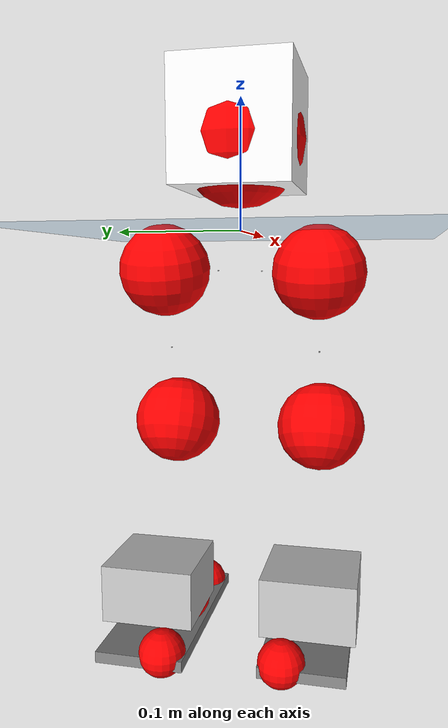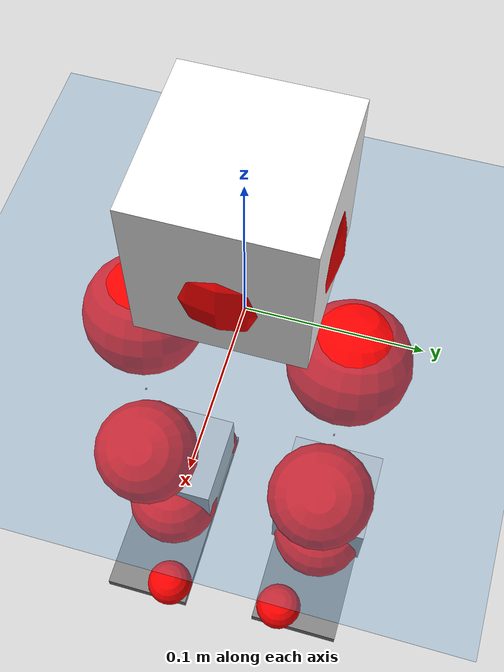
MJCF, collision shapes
<mujoco model="pi_12dof_release_v1">
  <compiler angle="radian" assetdir="assets" balanceinertia="true" inertiafromgeom="false"/>

  <option timestep="0.005" density="1.2" viscosity="2e-05"/>

  <size nkey="1"/>

  <visual>
    <quality shadowsize="8192"/>
    <map shadowclip="0.5"/>
  </visual>

  <default>
    <default class="/">
      <joint armature="0.01" damping="0.01" frictionloss="0.01"/>
      <geom contype="0" conaffinity="0" group="1" solref="-1000 -80"/>
      <site size="0.01 0.005 0.005" group="5"/>
      <general forcelimited="true" biastype="affine" gainprm="20" biasprm="0 -20 -0.5"/>
      <default class="foot">
        <geom size="0.0845 0.036 0.005" type="box" condim="6" group="4" priority="1" friction="0.9 0.2 0.2" solimp="0.015 1 0.005"/>
      </default>
      <default class="reward_collision_sphere">
        <geom group="5" rgba="1 0 0 1"/>
      </default>
    </default>
  </default>

  <asset>
    <texture type="skybox" colorspace="auto" name="//unnamed_texture_0" builtin="gradient" rgb1="0.95 0.95 0.95" rgb2="0.95 0.95 0.95" width="100" height="600"/>
    <texture type="2d" colorspace="auto" name="texplane" builtin="checker" rgb1="0.345 0.575 0.748" rgb2="0.345 0.575 0.748" markrgb="1 1 1" width="512" height="512"/>
    <material name="MatPlane" class="/" texture="texplane" texuniform="true" texrepeat="2 2" specular="0.9"/>
    <mesh name="baselink_1" class="/" file="baselink_1.STL"/>
    <mesh name="r_hip_pitch_link" class="/" file="r_hip_pitch_link.STL"/>
    <mesh name="r_hip_roll_link" class="/" file="r_hip_roll_link.STL"/>
    <mesh name="r_thigh_link" class="/" file="r_thigh_link.STL"/>
    <mesh name="r_calf_link" class="/" file="r_calf_link.STL"/>
    <mesh name="r_ankle_pitch_link" class="/" file="r_ankle_pitch_link.STL"/>
    <mesh name="r_ankle_roll_link" class="/" file="r_ankle_roll_link.STL"/>
    <mesh name="l_hip_pitch_link" class="/" file="l_hip_pitch_link.STL"/>
    <mesh name="l_hip_roll_link" class="/" file="l_hip_roll_link.STL"/>
    <mesh name="l_thigh_link" class="/" file="l_thigh_link.STL"/>
    <mesh name="l_calf_link" class="/" file="l_calf_link.STL"/>
    <mesh name="l_ankle_pitch_link" class="/" file="l_ankle_pitch_link.STL"/>
    <mesh name="l_ankle_roll_link" class="/" file="l_ankle_roll_link.STL"/>
  </asset>

  <worldbody>
    <geom name="floor" class="/" size="100 100 0.125" type="plane" group="0" material="MatPlane"/>
    <light name="toplight_shadow" class="/" pos="0 0 5" dir="0.0990148 0.0990148 -0.990148" type="directional" ambient="0.04 0.04 0.04" diffuse="0.55 0.55 0.55" specular="0.12 0.12 0.12"/>
    <light name="toplight_fill" class="/" pos="0 0 5" dir="0.0990148 0.0990148 -0.990148" type="directional" castshadow="false" ambient="0.04 0.04 0.04" diffuse="0.3 0.3 0.3" specular="0.08 0.08 0.08"/>
    <body name="trunk" pos="-7.09152e-05 -6.06109e-05 0.000513237" quat="1 0.000135496 7.95545e-06 5.36841e-05">
      <inertial pos="0.00223742 0.000144992 0.0383081" quat="0.695104 0.00961719 0.00937945 0.718784" mass="1.65933" diaginertia="0.00927079 0.00291463 0.00326755"/>
      <joint name="//unnamed_joint_0" type="free"/>
      <geom name="//unnamed_geom_1" class="/" type="mesh" density="0" rgba="1 1 1 1" mesh="baselink_1"/>
      <geom name="//unnamed_geom_2" class="/" size="0.0455277 0.0455277 0.0455277" pos="0 0 0.0759832" type="box" rgba="1 1 1 1"/>
      <geom name="//unnamed_geom_3" class="reward_collision_sphere" size="0.0500805" pos="0 0 0.0664853"/>
      <site name="imu" class="/" pos="-0.00229084 0.00476369 -0.00304655" size="0.00910555"/>
      <camera name="track" class="/" pos="0 -1.59204 0" quat="0.707107 0.707107 0 0" mode="trackcom"/>
      <camera name="ego_camera" class="/" pos="0.0739392 0 0.170962" quat="-0.5 -0.5 0.5 0.5"/>
      <body name="r_hip_pitch_link" pos="-0.00026818 -0.0169827 -0.0313919" quat="0.992196 6.9232e-05 -0.124691 1.36992e-05">
        <inertial pos="0.000792703 -0.0451437 0.00101928" quat="-0.0165761 0.706039 -0.0287486 0.707395" mass="0.279421" diaginertia="0.000101316 3.17616e-05 6.35489e-05"/>
        <joint name="r_hip_pitch_joint" class="/" pos="0 0 0" axis="0.0080959 -0.999952 -0.00557449" range="-1.75671 1.26319" armature="0.00952289" damping="0.0148296" frictionloss="0.00924456"/>
        <geom name="//unnamed_geom_4" class="/" type="mesh" density="0" rgba="0.75294 0.75294 0.75294 1" mesh="r_hip_pitch_link"/>
        <geom name="//unnamed_geom_5" class="/" size="0.000455277 0.000455277 0.000455277" type="box" rgba="0.75294 0.75294 0.75294 1"/>
        <body name="r_hip_roll_link" pos="0.000471277 -0.0442734 -0.000893323" quat="1 5.4571e-05 1.62848e-05 -0.000114106">
          <inertial pos="-0.00116219 1.16981e-05 -0.0576042" quat="0.705429 -0.0802951 -0.0816852 0.699464" mass="0.291881" diaginertia="0.000312644 8.81087e-05 9.69594e-05"/>
          <joint name="r_hip_roll_joint" class="/" pos="0 0 0" axis="-1 0.000179754 -0.000271701" range="-0.118657 0.494576" armature="0.00885774" damping="0.00306961" frictionloss="0.00868014"/>
          <geom name="//unnamed_geom_6" class="/" type="mesh" density="0" rgba="0.75294 0.75294 0.75294 1" mesh="r_hip_roll_link"/>
          <geom name="//unnamed_geom_7" class="/" size="0.000455277 0.000455277 0.000455277" type="box" rgba="0.75294 0.75294 0.75294 1"/>
          <geom name="//unnamed_geom_8" class="reward_collision_sphere" size="0.0364222"/>
          <body name="r_thigh_link" pos="0.000500846 0.000340716 -0.0654648" quat="1 0.00028572 0.00019829 -3.70888e-05">
            <inertial pos="0.00024454 0.000931197 -0.0448924" quat="0.737388 0.67547 0.000315113 0.000246025" mass="0.08606" diaginertia="0.000116519 3.00379e-05 4.48912e-05"/>
            <joint name="r_thigh_joint" class="/" pos="0 0 0" axis="0.000786564 -0.00208194 -0.999998" range="-0.303274 0.601026" armature="0.00915856" damping="0.0031106" frictionloss="0.00912383"/>
            <geom name="//unnamed_geom_9" class="/" type="mesh" density="0" rgba="0.75294 0.75294 0.75294 1" mesh="r_thigh_link"/>
            <geom name="//unnamed_geom_10" class="/" size="0.000455277 0.000455277 0.000455277" type="box" rgba="0.75294 0.75294 0.75294 1"/>
            <body name="r_calf_link" pos="-0.000917371 -0.000751409 -0.0663424" quat="0.947642 6.11884e-05 0.319334 1.48258e-05">
              <inertial pos="1.43119e-05 -0.000429315 -0.066818" quat="0.999985 -0.00319439 -0.000801209 0.00434252" mass="0.608151" diaginertia="0.00325902 0.00112312 0.00013499"/>
              <joint name="r_calf_joint" class="/" pos="0 0 0" axis="0.00110472 -0.999991 0.00403471" range="-1.63423 0.645115" armature="0.009101" damping="0.00838531" frictionloss="0.00913743"/>
              <geom name="//unnamed_geom_11" class="/" type="mesh" density="0" rgba="0.75294 0.75294 0.75294 1" mesh="r_calf_link"/>
              <geom name="//unnamed_geom_12" class="/" size="0.000455277 0.000455277 0.000455277" type="box" rgba="0.75294 0.75294 0.75294 1"/>
              <geom name="//unnamed_geom_13" class="reward_collision_sphere" size="0.0364222"/>
              <body name="r_ankle_pitch_link" pos="0.00215347 -0.000209743 -0.133229" quat="0.980058 -5.13508e-05 -0.198713 -0.000169477">
                <inertial pos="0.0049739 0.00232249 -0.000265564" quat="0.00235252 0.707102 -0.00287996 0.707102" mass="0.136846" diaginertia="0.000288723 7.29345e-05 9.48449e-05"/>
                <joint name="r_ankle_pitch_joint" class="/" pos="0 0 0" axis="0.00270471 -0.999986 -0.00445057" range="-1.28346 0.483441" armature="0.00914787" damping="0.0126465" frictionloss="0.00922061"/>
                <geom name="//unnamed_geom_14" class="/" type="mesh" density="0" rgba="0.75294 0.75294 0.75294 1" mesh="r_ankle_pitch_link"/>
                <geom name="//unnamed_geom_15" class="/" size="0.0355116 0.0364222 0.0227639" type="box" rgba="0.75294 0.75294 0.75294 1"/>
                <body name="r_ankle_roll_link" pos="0.076829 0.00214687 -0.000770468" quat="1 2.82426e-05 0.000156602 0.000138203">
                  <inertial pos="-0.0228407 -0.00024175 -0.0125771" quat="0.560175 0.430253 0.434264 0.559018" mass="0.383931" diaginertia="0.00104304 0.000330908 0.000219741"/>
                  <joint name="r_ankle_roll_joint" class="/" pos="0 0 0" axis="-1 0.000563675 9.06673e-05" stiffness="0.000459953" range="-0.144099 0.141109" armature="0.00914486" damping="0.0058636" frictionloss="0.00975483"/>
                  <geom name="//unnamed_geom_16" class="/" type="mesh" density="0" rgba="0.75294 0.75294 0.75294 1" mesh="r_ankle_roll_link"/>
                  <geom name="//unnamed_geom_17" class="/" type="mesh" rgba="0.75294 0.75294 0.75294 1" mesh="r_ankle_roll_link"/>
                  <geom name="right_foot" class="foot" size="0.077938 0.0331098 0.00435078" pos="-0.0502786 0 -0.0417907"/>
                  <geom name="//unnamed_geom_19" class="reward_collision_sphere" size="0.0364222" pos="-0.0492928 0 -0.0189958"/>
                  <geom name="//unnamed_geom_20" class="reward_collision_sphere" size="0.0182111" pos="0.0147878 0.0159204 -0.0379916"/>
                  <geom name="//unnamed_geom_21" class="reward_collision_sphere" size="0.0182111" pos="-0.118303 0.0159204 -0.0379916"/>
                  <site name="right_foot" class="foot" pos="-0.0502786 0 -0.0417907" size="0.00910555"/>
                </body>
              </body>
            </body>
          </body>
        </body>
      </body>
      <body name="l_hip_pitch_link" pos="0.000357535 0.0182695 -0.0310299" quat="0.99221 0.000129273 -0.124573 5.86918e-05">
        <inertial pos="0.00182862 0.0423987 0.000271407" quat="-0.0389934 0.699786 0.0272184 0.712768" mass="0.288148" diaginertia="0.000118858 3.32745e-05 7.86713e-05"/>
        <joint name="l_hip_pitch_joint" class="/" pos="0 0 0" axis="-0.00119559 0.999997 -0.00207483" range="-1.24755 1.73842" armature="0.00871832" damping="0.00623562" frictionloss="0.00903129"/>
        <geom name="//unnamed_geom_22" class="/" type="mesh" density="0" rgba="0.75294 0.75294 0.75294 1" mesh="l_hip_pitch_link"/>
        <geom name="//unnamed_geom_23" class="/" size="0.000455277 0.000455277 0.000455277" type="box" rgba="0.75294 0.75294 0.75294 1"/>
        <body name="l_hip_roll_link" pos="0.000196471 0.0440172 0.000291669" quat="1 0.000165947 -0.00043906 2.75769e-05">
          <inertial pos="-0.00182548 0.000510962 -0.0584786" quat="0.697563 -0.077841 -0.0781474 0.707983" mass="0.296529" diaginertia="0.000311735 9.0765e-05 9.92385e-05"/>
          <joint name="l_hip_roll_joint" class="/" pos="0 0 0" axis="-0.999988 -0.00410277 0.00252451" range="-0.469895 0.0969839" armature="0.00924498" damping="0.00400999" frictionloss="0.00919017"/>
          <geom name="//unnamed_geom_24" class="/" type="mesh" density="0" rgba="0.75294 0.75294 0.75294 1" mesh="l_hip_roll_link"/>
          <geom name="//unnamed_geom_25" class="/" size="0.000455277 0.000455277 0.000455277" type="box" rgba="0.75294 0.75294 0.75294 1"/>
          <geom name="//unnamed_geom_26" class="reward_collision_sphere" size="0.0364222"/>
          <body name="l_thigh_link" pos="-0.000701677 0.000126895 -0.0656031" quat="1 2.32338e-05 -4.92644e-05 -8.69083e-05">
            <inertial pos="0.000468409 -0.000991168 -0.0449008" quat="0.675542 0.737322 7.83629e-06 0.000172268" mass="0.086354" diaginertia="0.000119252 3.11863e-05 4.66976e-05"/>
            <joint name="l_thigh_joint" class="/" pos="0 0 0" axis="-0.000369585 -0.000650215 -1" stiffness="2.47031e-05" range="-0.599004 0.290978" armature="0.00935307" damping="0.00296206" frictionloss="0.00933405"/>
            <geom name="//unnamed_geom_27" class="/" type="mesh" density="0" rgba="0.75294 0.75294 0.75294 1" mesh="l_thigh_link"/>
            <geom name="//unnamed_geom_28" class="/" size="0.000455277 0.000455277 0.000455277" type="box" rgba="0.75294 0.75294 0.75294 1"/>
            <body name="l_calf_link" pos="-0.000510454 -0.000149036 -0.0667583" quat="0.94766 8.74064e-05 0.319281 -0.000162868">
              <inertial pos="0.000844005 0.00143716 -0.0656622" quat="0.999916 0.00448108 -0.00073653 0.0121078" mass="0.619726" diaginertia="0.0032748 0.00114215 0.000135989"/>
              <joint name="l_calf_joint" class="/" pos="0 0 0" axis="-0.000132486 0.999999 0.001692" range="-0.644051 1.67154" armature="0.00910695" damping="0.00817184" frictionloss="0.00946359"/>
              <geom name="//unnamed_geom_29" class="/" type="mesh" density="0" rgba="0.75294 0.75294 0.75294 1" mesh="l_calf_link"/>
              <geom name="//unnamed_geom_30" class="/" size="0.000455277 0.000455277 0.000455277" type="box" rgba="0.75294 0.75294 0.75294 1"/>
              <geom name="//unnamed_geom_31" class="reward_collision_sphere" size="0.0364222"/>
              <body name="l_ankle_pitch_link" pos="0.000613225 0.00117918 -0.134661" quat="0.980029 0.000160022 -0.198855 0.000131888">
                <inertial pos="0.00496163 0.000872459 -0.00103852" quat="-0.00239078 0.707439 0.00186002 0.706768" mass="0.130391" diaginertia="0.000281668 6.96248e-05 9.05958e-05"/>
                <joint name="l_ankle_pitch_joint" class="/" pos="0 0 0" axis="-0.00207604 0.999988 -0.00453289" stiffness="0.00043174" range="-0.498962 1.30329" armature="0.00907274" damping="0.00112026" frictionloss="0.00897356"/>
                <geom name="//unnamed_geom_32" class="/" type="mesh" density="0" rgba="0.75294 0.75294 0.75294 1" mesh="l_ankle_pitch_link"/>
                <geom name="//unnamed_geom_33" class="/" size="0.0355116 0.0364222 0.0227639" type="box" rgba="0.75294 0.75294 0.75294 1"/>
                <body name="l_ankle_roll_link" pos="0.0737853 0.000101795 -2.54602e-05" quat="1 4.29865e-05 -5.02849e-05 0.000109901">
                  <inertial pos="-0.0245605 -9.69431e-05 -0.0136502" quat="0.563273 0.430061 0.429504 0.55973" mass="0.392821" diaginertia="0.00107295 0.000334406 0.000226029"/>
                  <joint name="l_ankle_roll_joint" class="/" pos="0 0 0" axis="-0.999964 -0.0083224 -0.00157678" range="-0.152129 0.11893" armature="0.009094" damping="0.010096" frictionloss="0.00840846"/>
                  <geom name="//unnamed_geom_34" class="/" type="mesh" density="0" rgba="0.75294 0.75294 0.75294 1" mesh="l_ankle_roll_link"/>
                  <geom name="//unnamed_geom_35" class="/" type="mesh" rgba="0.75294 0.75294 0.75294 1" mesh="l_ankle_roll_link"/>
                  <geom name="left_foot" class="foot" size="0.078984 0.0344997 0.00445724" pos="-0.0502786 0 -0.0417907"/>
                  <geom name="//unnamed_geom_37" class="reward_collision_sphere" size="0.0364222" pos="-0.0492928 0 -0.0189958"/>
                  <geom name="//unnamed_geom_38" class="reward_collision_sphere" size="0.0182111" pos="0.0147878 -0.0159204 -0.0379916"/>
                  <geom name="//unnamed_geom_39" class="reward_collision_sphere" size="0.0182111" pos="-0.118303 -0.0159204 -0.0379916"/>
                  <site name="left_foot" class="foot" pos="-0.0502786 0 -0.0417907" size="0.00910555"/>
                </body>
              </body>
            </body>
          </body>
        </body>
      </body>
    </body>
  </worldbody>

  <contact>
    <pair class="/" geom1="floor" geom2="right_foot" name="//unnamed_contact_1"/>
    <pair class="/" geom1="floor" geom2="left_foot" name="//unnamed_contact_0"/>
  </contact>

  <actuator>
    <general name="r_hip_pitch_joint" class="/" joint="r_hip_pitch_joint" forcerange="-19.5232 19.5232" gainprm="18.6004" biasprm="0 -18.6004 -0.450356"/>
    <general name="r_hip_roll_joint" class="/" joint="r_hip_roll_joint" forcerange="-19.1448 19.1448" gainprm="18.6004" biasprm="0 -18.6004 -0.450356"/>
    <general name="r_thigh_joint" class="/" joint="r_thigh_joint" forcerange="-19.7715 19.7715" gainprm="18.6004" biasprm="0 -18.6004 -0.450356"/>
    <general name="r_calf_joint" class="/" joint="r_calf_joint" forcerange="-18.8282 18.8282" gainprm="18.6004" biasprm="0 -18.6004 -0.450356"/>
    <general name="r_ankle_pitch_joint" class="/" joint="r_ankle_pitch_joint" forcerange="-18.5256 18.5256" gainprm="18.6004" biasprm="0 -18.6004 -0.450356"/>
    <general name="r_ankle_roll_joint" class="/" joint="r_ankle_roll_joint" forcerange="-19.5845 19.5845" gainprm="18.6004" biasprm="0 -18.6004 -0.450356"/>
    <general name="l_hip_pitch_joint" class="/" joint="l_hip_pitch_joint" forcerange="-19.8236 19.8236" gainprm="18.6004" biasprm="0 -18.6004 -0.450356"/>
    <general name="l_hip_roll_joint" class="/" joint="l_hip_roll_joint" forcerange="-18.0738 18.0738" gainprm="18.6004" biasprm="0 -18.6004 -0.450356"/>
    <general name="l_thigh_joint" class="/" joint="l_thigh_joint" forcerange="-19.2065 19.2065" gainprm="18.6004" biasprm="0 -18.6004 -0.450356"/>
    <general name="l_calf_joint" class="/" joint="l_calf_joint" forcerange="-19.2227 19.2227" gainprm="18.6004" biasprm="0 -18.6004 -0.450356"/>
    <general name="l_ankle_pitch_joint" class="/" joint="l_ankle_pitch_joint" forcerange="-18.8179 18.8179" gainprm="18.6004" biasprm="0 -18.6004 -0.450356"/>
    <general name="l_ankle_roll_joint" class="/" joint="l_ankle_roll_joint" forcerange="-19.7678 19.7678" gainprm="18.6004" biasprm="0 -18.6004 -0.450356"/>
  </actuator>

  <sensor>
    <gyro site="imu" name="imu_angular_velocity"/>
    <velocimeter site="imu" name="imu_linear_velocity"/>
    <framelinvel objtype="site" objname="left_foot" name="left_foot_global_linear_velocity"/>
    <framelinvel objtype="site" objname="right_foot" name="right_foot_global_linear_velocity"/>
  </sensor>

  <keyframe>
    <key name="home" qpos="0 0 0.291 1 0 0 0 0.4 0 0 -0.8 0.4 0 -0.4 0 0 0.8 -0.4 0"/>
  </keyframe>
</mujoco>
